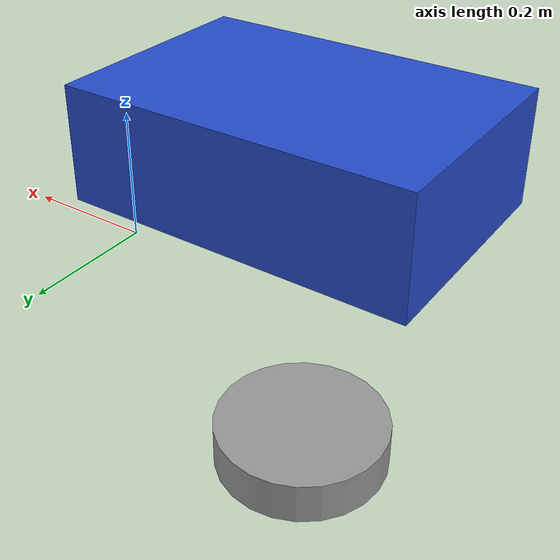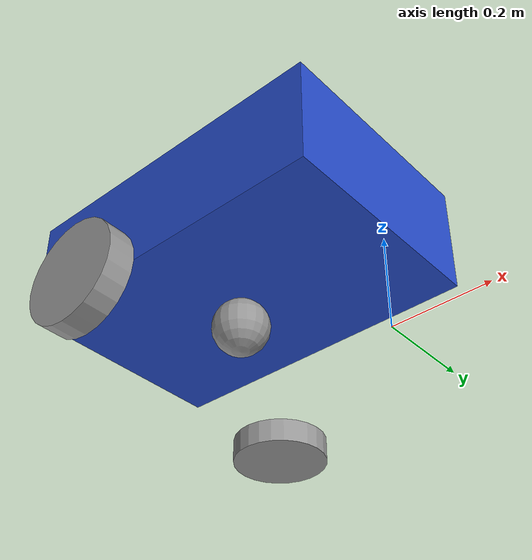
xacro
<?xml version="1.0"?>
<robot name="my_robot" xmlns:xacro="http://www.ros.org/wiki/xacro">

  <!-- 属性定义 -->
  <xacro:property name="basic_length" value="0.6"/>
  <xacro:property name="basic_width" value="0.4"/>
  <xacro:property name="basic_height" value="0.2"/>
  <xacro:property name="wheel_radius" value="0.1"/>
  <xacro:property name="wheel_length" value="0.05"/>
  <xacro:property name="wheel_mass" value="0.5"/>
  <xacro:property name="caster_mass" value="0.1"/>

  <!-- ================= base_link (车身) ================= -->
  <link name="base_link">
    <visual>
      <geometry>
        <box size="${basic_length} ${basic_width} ${basic_height}"/>
      </geometry>
      <origin xyz="0 0 0.1" rpy="0 0 0"/>
      <material name="blue"/>
    </visual>
    <collision>
      <geometry>
        <box size="${basic_length} ${basic_width} ${basic_height}"/>
      </geometry>
      <origin xyz="0 0 0.1" rpy="0 0 0"/>
    </collision>
    <inertial>
      <mass value="5.0"/>
      <origin xyz="0 0 ${basic_height/2.0}" rpy="0 0 0"/>
      <inertia ixx="${(5.0/12)*(basic_width*basic_width+basic_height*basic_height)}" ixy="0" ixz="0"
               iyy="${(5.0/12)*(basic_length*basic_length+basic_height*basic_height)}" iyz="0"
               izz="${(5.0/12)*(basic_length*basic_length+basic_width*basic_width)}"/>
    </inertial>
  </link>

  <link name="base_footprint"/>

  <link name="rightwheel_link">
    <visual>
      <geometry>
        <cylinder radius="0.1" length="0.05"/>
      </geometry>
      <!-- pi/2 = 1.57 -->
      <origin xyz="0 0 0" rpy="1.57 0 0"/>
      <material name="grey"/>
    </visual>
    <collision>
      <geometry>
        <cylinder radius="0.1" length="0.05"/>
      </geometry>
      <origin xyz="0 0 0" rpy="0 0 0"/>
    </collision>
    <inertial>
      <mass value="0.5"/>
      <origin xyz="0 0 0" rpy="0 0 0"/>
      <inertia ixx="${(0.5/12)*(3*0.1*0.1+0.05*0.05)}" ixy="0" ixz="0"
               iyy="${(0.5/12)*(3*0.1*0.1+0.05*0.05)}" iyz="0"
               izz="${(0.5/2)*0.1*0.1}"/>
    </inertial>
  </link>

  <link name="leftwheel_link">
    <visual>
      <geometry>
        <cylinder radius="0.1" length="0.05"/>
      </geometry>
      <origin xyz="${-basic_length/4.0} 0.225 0" rpy="0 0 0"/>
      <material name="grey"/>
    </visual>
    <collision>
      <geometry>
        <cylinder radius="0.1" length="0.05"/>
      </geometry>
      <origin xyz="0 0 0" rpy="0 0 0"/>
    </collision>
    <inertial>
      <mass value="0.5"/>
      <origin xyz="0 0 0" rpy="0 0 0"/>
      <inertia ixx="${(0.5/12)*(3*0.1*0.1+0.05*0.05)}" ixy="0" ixz="0"
               iyy="${(0.5/12)*(3*0.1*0.1+0.05*0.05)}" iyz="0"
               izz="${(0.5/2)*0.1*0.1}"/>
    </inertial>
  </link>

  <link name="caster_wheel_link">
    <visual>
      <geometry>
        <sphere radius="0.05"/>
      </geometry>
      <origin xyz="0.2 0 0" rpy="0 0 0"/>
      <material name="grey"/>
    </visual>
    <collision>
      <geometry>
        <sphere radius="0.05"/>
      </geometry>
      <origin xyz="0 0 0" rpy="0 0 0"/>
    </collision>
    <inertial>
      <mass value="0.1"/>
      <origin xyz="0 0 0" rpy="0 0 0"/>
      <inertia ixx="${(2.0/5.0)*0.1*0.05*0.05}" ixy="0" ixz="0"
               iyy="${(2.0/5.0)*0.1*0.05*0.05}" iyz="0"
               izz="${(2.0/5.0)*0.1*0.05*0.05}"/>
    </inertial>
  </link>

  <joint name="base_rightwheel_joint" type="continuous">
    <parent link="base_link"/>
    <child link="rightwheel_link"/>
    <origin xyz="${-basic_length/4.0} -0.225 0" rpy="0 0 0"/>
    <axis xyz="0 1 0"/>
  </joint>

  <joint name="base_leftwheel_joint" type="continuous">
    <parent link="base_link"/>
    <child link="leftwheel_link"/>
    <origin xyz="${-basic_length/4.0} 0.225 0" rpy="0 0 0"/>
    <axis xyz="1 0 0"/>
  </joint>

  <joint name="base_caster_wheel_joint" type="fixed">
    <parent link="base_link"/>
    <child link="caster_wheel_link"/>
    <origin xyz="${-basic_length/3.0} 0 -0.05" rpy="0 0 0"/>
  </joint>

  <joint name="base_joint" type="fixed">
    <parent link="base_footprint"/>
    <child link="base_link"/>
    <origin xyz="-0.15 -0.225 0" rpy="0 0 0"/>
  </joint>

</robot>
